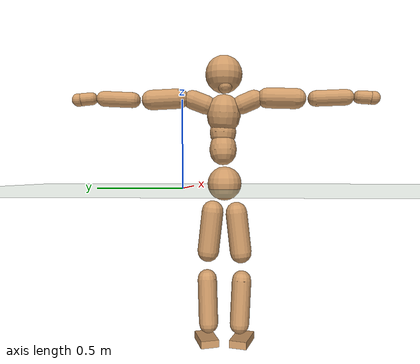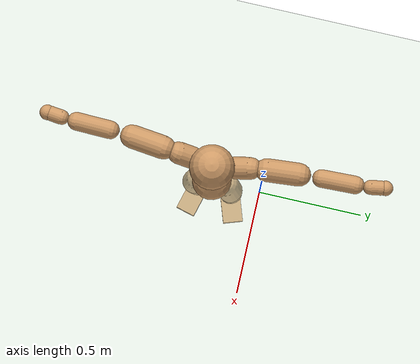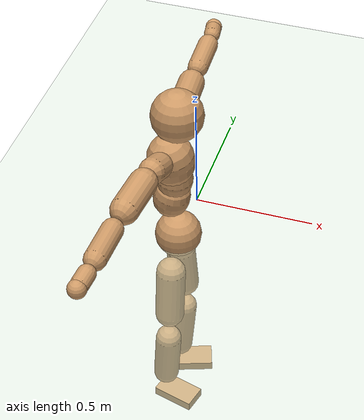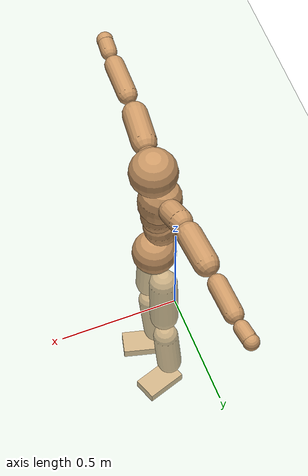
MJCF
<mujoco model="humanoid">
  <compiler coordinate="local"/>
  <default>
    <joint damping="0.0" armature="0.01" stiffness="0.0" limited="true"/>
    <geom conaffinity="1" condim="3" contype="7" margin="0.001" rgba="0.8 0.6 .4 1"/>
  </default>
  <asset>
    <texture type="skybox" builtin="gradient" rgb1=".4 .5 .6" rgb2="0 0 0" width="100" height="100"/>
    <texture builtin="flat" height="1278" mark="cross" markrgb="1 1 1" name="texgeom" random="0.01" rgb1="0.8 0.6 0.4" rgb2="0.8 0.6 0.4" type="cube" width="127"/>
    <texture builtin="checker" height="100" name="texplane" rgb1="0 0 0" rgb2="0.8 0.8 0.8" type="2d" width="100"/>
    <material name="MatPlane" reflectance="0.5" shininess="1" specular="1" texrepeat="60 60" texture="texplane"/>
    <material name="geom" texture="texgeom" texuniform="true"/>
  </asset>
  <worldbody>
    <light cutoff="100" diffuse="1 1 1" dir="-0 0 -1.3" directional="true" exponent="1" pos="0 0 1.3" specular=".1 .1 .1"/>
    <geom conaffinity="1" condim="3" name="floor" pos="0 0 0" rgba="0.8 0.9 0.8 1" size="100 100 .2" type="plane" material="MatPlane"/>
    <body name="Pelvis" pos="-0.0024 -0.2387 0.0293">
      <freejoint name="Pelvis"/>
      <geom type="sphere" contype="1" conaffinity="1" density="500" size="0.0963" pos="0.0000 0.0000 0.0000" name="Pelvis"/>
      <body name="L_Hip" pos="-0.017 0.0583 -0.0816">
        <joint name="L_Hip_x" type="hinge" pos="0 0 0" axis="1 0 0" stiffness="800" damping="80" armature="0.02" range="-180.0000 180.0000"/>
        <joint name="L_Hip_y" type="hinge" pos="0 0 0" axis="0 1 0" stiffness="800" damping="80" armature="0.02" range="-180.0000 180.0000"/>
        <joint name="L_Hip_z" type="hinge" pos="0 0 0" axis="0 0 1" stiffness="800" damping="80" armature="0.02" range="-180.0000 180.0000"/>
        <geom type="capsule" contype="1" conaffinity="1" density="500" fromto="0.0017 0.0086 -0.0763 0.0070 0.0343 -0.3052" size="0.0617" name="L_Hip"/>
        <body name="L_Knee" pos="0.0087 0.0429 -0.3815">
          <joint name="L_Knee_x" type="hinge" pos="0 0 0" axis="1 0 0" stiffness="800" damping="80" armature="0.02" range="-180.0000 180.0000"/>
          <joint name="L_Knee_y" type="hinge" pos="0 0 0" axis="0 1 0" stiffness="800" damping="80" armature="0.02" range="-180.0000 180.0000"/>
          <joint name="L_Knee_z" type="hinge" pos="0 0 0" axis="0 0 1" stiffness="800" damping="80" armature="0.02" range="-180.0000 180.0000"/>
          <geom type="capsule" contype="1" conaffinity="1" density="500" fromto="-0.0074 -0.0029 -0.0842 -0.0295 -0.0117 -0.3370" size="0.0547" name="L_Knee"/>
          <body name="L_Ankle" pos="-0.0369 -0.0146 -0.4212">
            <joint name="L_Ankle_x" type="hinge" pos="0 0 0" axis="1 0 0" stiffness="800" damping="80" armature="0.02" range="-180.0000 180.0000"/>
            <joint name="L_Ankle_y" type="hinge" pos="0 0 0" axis="0 1 0" stiffness="800" damping="80" armature="0.02" range="-180.0000 180.0000"/>
            <joint name="L_Ankle_z" type="hinge" pos="0 0 0" axis="0 0 1" stiffness="800" damping="80" armature="0.02" range="-180.0000 180.0000"/>
            <geom type="box" contype="1" conaffinity="1" density="500" pos="0.0604 0.0206 -0.0298" size="0.0881 0.052 0.0213" quat="0.9865 0.0000 0.0000 0.1637" name="L_Ankle"/>
            <body name="L_Toe" pos="0.1208 0.0412 -0.0597">
              <joint name="L_Toe_x" type="hinge" pos="0 0 0" axis="1 0 0" stiffness="500" damping="50" armature="0.02" range="-180.0000 180.0000"/>
              <joint name="L_Toe_y" type="hinge" pos="0 0 0" axis="0 1 0" stiffness="500" damping="50" armature="0.02" range="-180.0000 180.0000"/>
              <joint name="L_Toe_z" type="hinge" pos="0 0 0" axis="0 0 1" stiffness="500" damping="50" armature="0.02" range="-180.0000 180.0000"/>
              <geom type="box" contype="1" conaffinity="1" density="500" pos="0.0000 0.0000 0.0290" size="0.0011 0.0025 0.001" quat="0.9857 0.0000 0.0000 0.1684" name="L_Toe"/>
            </body>
          </body>
        </body>
      </body>
      <body name="R_Hip" pos="-0.0127 -0.0599 -0.0899">
        <joint name="R_Hip_x" type="hinge" pos="0 0 0" axis="1 0 0" stiffness="800" damping="80" armature="0.02" range="-180.0000 180.0000"/>
        <joint name="R_Hip_y" type="hinge" pos="0 0 0" axis="0 1 0" stiffness="800" damping="80" armature="0.02" range="-180.0000 180.0000"/>
        <joint name="R_Hip_z" type="hinge" pos="0 0 0" axis="0 0 1" stiffness="800" damping="80" armature="0.02" range="-180.0000 180.0000"/>
        <geom type="capsule" contype="1" conaffinity="1" density="500" fromto="-0.0009 -0.0085 -0.0756 -0.0035 -0.0340 -0.3025" size="0.0612" name="R_Hip"/>
        <body name="R_Knee" pos="-0.0043 -0.0425 -0.3782">
          <joint name="R_Knee_x" type="hinge" pos="0 0 0" axis="1 0 0" stiffness="800" damping="80" armature="0.02" range="-180.0000 180.0000"/>
          <joint name="R_Knee_y" type="hinge" pos="0 0 0" axis="0 1 0" stiffness="800" damping="80" armature="0.02" range="-180.0000 180.0000"/>
          <joint name="R_Knee_z" type="hinge" pos="0 0 0" axis="0 0 1" stiffness="800" damping="80" armature="0.02" range="-180.0000 180.0000"/>
          <geom type="capsule" contype="1" conaffinity="1" density="500" fromto="-0.0069 0.0037 -0.0828 -0.0275 0.0149 -0.3311" size="0.055" name="R_Knee"/>
          <body name="R_Ankle" pos="-0.0344 0.0186 -0.4139">
            <joint name="R_Ankle_x" type="hinge" pos="0 0 0" axis="1 0 0" stiffness="800" damping="80" armature="0.02" range="-180.0000 180.0000"/>
            <joint name="R_Ankle_y" type="hinge" pos="0 0 0" axis="0 1 0" stiffness="800" damping="80" armature="0.02" range="-180.0000 180.0000"/>
            <joint name="R_Ankle_z" type="hinge" pos="0 0 0" axis="0 0 1" stiffness="800" damping="80" armature="0.02" range="-180.0000 180.0000"/>
            <geom type="box" contype="1" conaffinity="1" density="500" pos="0.0646 -0.0171 -0.0304" size="0.0904 0.0508 0.0217" quat="0.9916 0.0000 0.0000 -0.1292" name="R_Ankle"/>
            <body name="R_Toe" pos="0.1293 -0.0343 -0.0608">
              <joint name="R_Toe_x" type="hinge" pos="0 0 0" axis="1 0 0" stiffness="500" damping="50" armature="0.02" range="-180.0000 180.0000"/>
              <joint name="R_Toe_y" type="hinge" pos="0 0 0" axis="0 1 0" stiffness="500" damping="50" armature="0.02" range="-180.0000 180.0000"/>
              <joint name="R_Toe_z" type="hinge" pos="0 0 0" axis="0 0 1" stiffness="500" damping="50" armature="0.02" range="-180.0000 180.0000"/>
              <geom type="box" contype="1" conaffinity="1" density="500" pos="0.0000 0.0000 0.0303" size="0.0011 0.0025 0.0011" quat="0.9927 0.0000 0.0000 -0.1202" name="R_Toe"/>
            </body>
          </body>
        </body>
      </body>
      <body name="Torso" pos="-0.0391 0.0044 0.1236">
        <joint name="Torso_x" type="hinge" pos="0 0 0" axis="1 0 0" stiffness="1000" damping="100" armature="0.02" range="-180.0000 180.0000"/>
        <joint name="Torso_y" type="hinge" pos="0 0 0" axis="0 1 0" stiffness="1000" damping="100" armature="0.02" range="-180.0000 180.0000"/>
        <joint name="Torso_z" type="hinge" pos="0 0 0" axis="0 0 1" stiffness="1000" damping="100" armature="0.02" range="-180.0000 180.0000"/>
        <geom type="capsule" contype="1" conaffinity="1" density="500" fromto="0.0157 0.0027 0.0820 0.0105 0.0018 0.0547" size="0.074493" name="Torso"/>
        <body name="Spine" pos="0.0262 0.0045 0.1367">
          <joint name="Spine_x" type="hinge" pos="0 0 0" axis="1 0 0" stiffness="1000" damping="100" armature="0.02" range="-180.0000 180.0000"/>
          <joint name="Spine_y" type="hinge" pos="0 0 0" axis="0 1 0" stiffness="1000" damping="100" armature="0.02" range="-180.0000 180.0000"/>
          <joint name="Spine_z" type="hinge" pos="0 0 0" axis="0 0 1" stiffness="1000" damping="100" armature="0.02" range="-180.0000 180.0000"/>
          <geom type="capsule" contype="1" conaffinity="1" density="500" fromto="0.0017 -0.0013 0.0333 0.0011 -0.0009 0.0222" size="0.073284" name="Spine"/>
          <body name="Chest" pos="0.0028 -0.0022 0.0555">
            <joint name="Chest_x" type="hinge" pos="0 0 0" axis="1 0 0" stiffness="1000" damping="100" armature="0.02" range="-180.0000 180.0000"/>
            <joint name="Chest_y" type="hinge" pos="0 0 0" axis="0 1 0" stiffness="1000" damping="100" armature="0.02" range="-180.0000 180.0000"/>
            <joint name="Chest_z" type="hinge" pos="0 0 0" axis="0 0 1" stiffness="1000" damping="100" armature="0.02" range="-180.0000 180.0000"/>
            <geom type="capsule" contype="1" conaffinity="1" density="500" fromto="-0.0153 -0.0048 0.0863 -0.0102 -0.0032 0.0576" size="0.093651" name="Chest"/>
            <body name="Neck" pos="-0.0332 -0.0129 0.2081">
              <joint name="Neck_x" type="hinge" pos="0 0 0" axis="1 0 0" stiffness="500" damping="50" armature="0.02" range="-180.0000 180.0000"/>
              <joint name="Neck_y" type="hinge" pos="0 0 0" axis="0 1 0" stiffness="500" damping="50" armature="0.02" range="-180.0000 180.0000"/>
              <joint name="Neck_z" type="hinge" pos="0 0 0" axis="0 0 1" stiffness="500" damping="50" armature="0.02" range="-180.0000 180.0000"/>
              <geom type="capsule" contype="1" conaffinity="1" density="500" fromto="0.0100 0.0020 0.0174 0.0399 0.0082 0.0697" size="0.04185" name="Neck"/>
              <body name="Head" pos="0.0499 0.0102 0.0872">
                <joint name="Head_x" type="hinge" pos="0 0 0" axis="1 0 0" stiffness="500" damping="50" armature="0.02" range="-180.0000 180.0000"/>
                <joint name="Head_y" type="hinge" pos="0 0 0" axis="0 1 0" stiffness="500" damping="50" armature="0.02" range="-180.0000 180.0000"/>
                <joint name="Head_z" type="hinge" pos="0 0 0" axis="0 0 1" stiffness="500" damping="50" armature="0.02" range="-180.0000 180.0000"/>
                <geom type="sphere" contype="1" conaffinity="1" density="500" size="0.1041" pos="0.0000 0.0000 0.0000" name="Head"/>
              </body>
            </body>
            <body name="L_Thorax" pos="-0.0193 0.07 0.1126">
              <joint name="L_Thorax_x" type="hinge" pos="0 0 0" axis="1 0 0" stiffness="500" damping="50" armature="0.02" range="-180.0000 180.0000"/>
              <joint name="L_Thorax_y" type="hinge" pos="0 0 0" axis="0 1 0" stiffness="500" damping="50" armature="0.02" range="-180.0000 180.0000"/>
              <joint name="L_Thorax_z" type="hinge" pos="0 0 0" axis="0 0 1" stiffness="500" damping="50" armature="0.02" range="-180.0000 180.0000"/>
              <geom type="capsule" contype="1" conaffinity="1" density="500" fromto="-0.0037 0.0241 0.0088 -0.0148 0.0966 0.0353" size="0.0522" name="L_Thorax"/>
              <body name="L_Shoulder" pos="-0.0185 0.1207 0.0441">
                <joint name="L_Shoulder_x" type="hinge" pos="0 0 0" axis="1 0 0" stiffness="500" damping="50" armature="0.02" range="-720.0000 720.0000"/>
                <joint name="L_Shoulder_y" type="hinge" pos="0 0 0" axis="0 1 0" stiffness="500" damping="50" armature="0.02" range="-720.0000 720.0000"/>
                <joint name="L_Shoulder_z" type="hinge" pos="0 0 0" axis="0 0 1" stiffness="500" damping="50" armature="0.02" range="-720.0000 720.0000"/>
                <geom type="capsule" contype="1" conaffinity="1" density="500" fromto="-0.0045 0.0503 -0.0029 -0.0182 0.2011 -0.0118" size="0.0544" name="L_Shoulder"/>
                <body name="L_Elbow" pos="-0.0227 0.2513 -0.0147">
                  <joint name="L_Elbow_x" type="hinge" pos="0 0 0" axis="1 0 0" stiffness="500" damping="50" armature="0.02" range="-720.0000 720.0000"/>
                  <joint name="L_Elbow_y" type="hinge" pos="0 0 0" axis="0 1 0" stiffness="500" damping="50" armature="0.02" range="-720.0000 720.0000"/>
                  <joint name="L_Elbow_z" type="hinge" pos="0 0 0" axis="0 0 1" stiffness="500" damping="50" armature="0.02" range="-720.0000 720.0000"/>
                  <geom type="capsule" contype="1" conaffinity="1" density="500" fromto="-0.0015 0.0527 0.0025 -0.0061 0.2107 0.0100" size="0.0422" name="L_Elbow"/>
                  <body name="L_Wrist" pos="-0.0076 0.2633 0.0125">
                    <joint name="L_Wrist_x" type="hinge" pos="0 0 0" axis="1 0 0" stiffness="300" damping="30" armature="0.02" range="-180.0000 180.0000"/>
                    <joint name="L_Wrist_y" type="hinge" pos="0 0 0" axis="0 1 0" stiffness="300" damping="30" armature="0.02" range="-180.0000 180.0000"/>
                    <joint name="L_Wrist_z" type="hinge" pos="0 0 0" axis="0 0 1" stiffness="300" damping="30" armature="0.02" range="-180.0000 180.0000"/>
                    <geom type="capsule" contype="1" conaffinity="1" density="500" fromto="-0.0031 0.0173 -0.0021 -0.0124 0.0691 -0.0085" size="0.034" name="L_Wrist"/>
                    <body name="L_Hand" pos="-0.0155 0.0863 -0.0106">
                      <joint name="L_Hand_x" type="hinge" pos="0 0 0" axis="1 0 0" stiffness="300" damping="30" armature="0.02" range="-180.0000 180.0000"/>
                      <joint name="L_Hand_y" type="hinge" pos="0 0 0" axis="0 1 0" stiffness="300" damping="30" armature="0.02" range="-180.0000 180.0000"/>
                      <joint name="L_Hand_z" type="hinge" pos="0 0 0" axis="0 0 1" stiffness="300" damping="30" armature="0.02" range="-180.0000 180.0000"/>
                      <geom type="sphere" contype="1" conaffinity="1" density="500" size="0.0354" pos="0.0000 0.0000 0.0000" name="L_Hand"/>
                    </body>
                  </body>
                </body>
              </body>
            </body>
            <body name="R_Thorax" pos="-0.024 -0.081 0.111">
              <joint name="R_Thorax_x" type="hinge" pos="0 0 0" axis="1 0 0" stiffness="500" damping="50" armature="0.02" range="-180.0000 180.0000"/>
              <joint name="R_Thorax_y" type="hinge" pos="0 0 0" axis="0 1 0" stiffness="500" damping="50" armature="0.02" range="-180.0000 180.0000"/>
              <joint name="R_Thorax_z" type="hinge" pos="0 0 0" axis="0 0 1" stiffness="500" damping="50" armature="0.02" range="-180.0000 180.0000"/>
              <geom type="capsule" contype="1" conaffinity="1" density="500" fromto="-0.0016 -0.0222 0.0091 -0.0066 -0.0889 0.0364" size="0.0523" name="R_Thorax"/>
              <body name="R_Shoulder" pos="-0.0082 -0.1112 0.0455">
                <joint name="R_Shoulder_x" type="hinge" pos="0 0 0" axis="1 0 0" stiffness="500" damping="50" armature="0.02" range="-720.0000 720.0000"/>
                <joint name="R_Shoulder_y" type="hinge" pos="0 0 0" axis="0 1 0" stiffness="500" damping="50" armature="0.02" range="-720.0000 720.0000"/>
                <joint name="R_Shoulder_z" type="hinge" pos="0 0 0" axis="0 0 1" stiffness="500" damping="50" armature="0.02" range="-720.0000 720.0000"/>
                <geom type="capsule" contype="1" conaffinity="1" density="500" fromto="-0.0062 -0.0513 -0.0027 -0.0247 -0.2051 -0.0108" size="0.0551" name="R_Shoulder"/>
                <body name="R_Elbow" pos="-0.0308 -0.2564 -0.0135">
                  <joint name="R_Elbow_x" type="hinge" pos="0 0 0" axis="1 0 0" stiffness="500" damping="50" armature="0.02" range="-720.0000 720.0000"/>
                  <joint name="R_Elbow_y" type="hinge" pos="0 0 0" axis="0 1 0" stiffness="500" damping="50" armature="0.02" range="-720.0000 720.0000"/>
                  <joint name="R_Elbow_z" type="hinge" pos="0 0 0" axis="0 0 1" stiffness="500" damping="50" armature="0.02" range="-720.0000 720.0000"/>
                  <geom type="capsule" contype="1" conaffinity="1" density="500" fromto="-0.0012 -0.0533 0.0014 -0.0049 -0.2134 0.0056" size="0.0428" name="R_Elbow"/>
                  <body name="R_Wrist" pos="-0.0061 -0.2667 0.007">
                    <joint name="R_Wrist_x" type="hinge" pos="0 0 0" axis="1 0 0" stiffness="300" damping="30" armature="0.02" range="-180.0000 180.0000"/>
                    <joint name="R_Wrist_y" type="hinge" pos="0 0 0" axis="0 1 0" stiffness="300" damping="30" armature="0.02" range="-180.0000 180.0000"/>
                    <joint name="R_Wrist_z" type="hinge" pos="0 0 0" axis="0 0 1" stiffness="300" damping="30" armature="0.02" range="-180.0000 180.0000"/>
                    <geom type="capsule" contype="1" conaffinity="1" density="500" fromto="-0.0020 -0.0177 -0.0017 -0.0081 -0.0707 -0.0069" size="0.0347" name="R_Wrist"/>
                    <body name="R_Hand" pos="-0.0101 -0.0884 -0.0086">
                      <joint name="R_Hand_x" type="hinge" pos="0 0 0" axis="1 0 0" stiffness="300" damping="30" armature="0.02" range="-180.0000 180.0000"/>
                      <joint name="R_Hand_y" type="hinge" pos="0 0 0" axis="0 1 0" stiffness="300" damping="30" armature="0.02" range="-180.0000 180.0000"/>
                      <joint name="R_Hand_z" type="hinge" pos="0 0 0" axis="0 0 1" stiffness="300" damping="30" armature="0.02" range="-180.0000 180.0000"/>
                      <geom type="sphere" contype="1" conaffinity="1" density="500" size="0.0360" pos="0.0000 0.0000 0.0000" name="R_Hand"/>
                    </body>
                  </body>
                </body>
              </body>
            </body>
          </body>
        </body>
      </body>
    </body>
  </worldbody>
  <actuator>
    <motor name="L_Hip_x" joint="L_Hip_x" gear="500"/>
    <motor name="L_Hip_y" joint="L_Hip_y" gear="500"/>
    <motor name="L_Hip_z" joint="L_Hip_z" gear="500"/>
    <motor name="L_Knee_x" joint="L_Knee_x" gear="500"/>
    <motor name="L_Knee_y" joint="L_Knee_y" gear="500"/>
    <motor name="L_Knee_z" joint="L_Knee_z" gear="500"/>
    <motor name="L_Ankle_x" joint="L_Ankle_x" gear="500"/>
    <motor name="L_Ankle_y" joint="L_Ankle_y" gear="500"/>
    <motor name="L_Ankle_z" joint="L_Ankle_z" gear="500"/>
    <motor name="L_Toe_x" joint="L_Toe_x" gear="500"/>
    <motor name="L_Toe_y" joint="L_Toe_y" gear="500"/>
    <motor name="L_Toe_z" joint="L_Toe_z" gear="500"/>
    <motor name="R_Hip_x" joint="R_Hip_x" gear="500"/>
    <motor name="R_Hip_y" joint="R_Hip_y" gear="500"/>
    <motor name="R_Hip_z" joint="R_Hip_z" gear="500"/>
    <motor name="R_Knee_x" joint="R_Knee_x" gear="500"/>
    <motor name="R_Knee_y" joint="R_Knee_y" gear="500"/>
    <motor name="R_Knee_z" joint="R_Knee_z" gear="500"/>
    <motor name="R_Ankle_x" joint="R_Ankle_x" gear="500"/>
    <motor name="R_Ankle_y" joint="R_Ankle_y" gear="500"/>
    <motor name="R_Ankle_z" joint="R_Ankle_z" gear="500"/>
    <motor name="R_Toe_x" joint="R_Toe_x" gear="500"/>
    <motor name="R_Toe_y" joint="R_Toe_y" gear="500"/>
    <motor name="R_Toe_z" joint="R_Toe_z" gear="500"/>
    <motor name="Torso_x" joint="Torso_x" gear="500"/>
    <motor name="Torso_y" joint="Torso_y" gear="500"/>
    <motor name="Torso_z" joint="Torso_z" gear="500"/>
    <motor name="Spine_x" joint="Spine_x" gear="500"/>
    <motor name="Spine_y" joint="Spine_y" gear="500"/>
    <motor name="Spine_z" joint="Spine_z" gear="500"/>
    <motor name="Chest_x" joint="Chest_x" gear="500"/>
    <motor name="Chest_y" joint="Chest_y" gear="500"/>
    <motor name="Chest_z" joint="Chest_z" gear="500"/>
    <motor name="Neck_x" joint="Neck_x" gear="500"/>
    <motor name="Neck_y" joint="Neck_y" gear="500"/>
    <motor name="Neck_z" joint="Neck_z" gear="500"/>
    <motor name="Head_x" joint="Head_x" gear="500"/>
    <motor name="Head_y" joint="Head_y" gear="500"/>
    <motor name="Head_z" joint="Head_z" gear="500"/>
    <motor name="L_Thorax_x" joint="L_Thorax_x" gear="500"/>
    <motor name="L_Thorax_y" joint="L_Thorax_y" gear="500"/>
    <motor name="L_Thorax_z" joint="L_Thorax_z" gear="500"/>
    <motor name="L_Shoulder_x" joint="L_Shoulder_x" gear="500"/>
    <motor name="L_Shoulder_y" joint="L_Shoulder_y" gear="500"/>
    <motor name="L_Shoulder_z" joint="L_Shoulder_z" gear="500"/>
    <motor name="L_Elbow_x" joint="L_Elbow_x" gear="500"/>
    <motor name="L_Elbow_y" joint="L_Elbow_y" gear="500"/>
    <motor name="L_Elbow_z" joint="L_Elbow_z" gear="500"/>
    <motor name="L_Wrist_x" joint="L_Wrist_x" gear="500"/>
    <motor name="L_Wrist_y" joint="L_Wrist_y" gear="500"/>
    <motor name="L_Wrist_z" joint="L_Wrist_z" gear="500"/>
    <motor name="L_Hand_x" joint="L_Hand_x" gear="500"/>
    <motor name="L_Hand_y" joint="L_Hand_y" gear="500"/>
    <motor name="L_Hand_z" joint="L_Hand_z" gear="500"/>
    <motor name="R_Thorax_x" joint="R_Thorax_x" gear="500"/>
    <motor name="R_Thorax_y" joint="R_Thorax_y" gear="500"/>
    <motor name="R_Thorax_z" joint="R_Thorax_z" gear="500"/>
    <motor name="R_Shoulder_x" joint="R_Shoulder_x" gear="500"/>
    <motor name="R_Shoulder_y" joint="R_Shoulder_y" gear="500"/>
    <motor name="R_Shoulder_z" joint="R_Shoulder_z" gear="500"/>
    <motor name="R_Elbow_x" joint="R_Elbow_x" gear="500"/>
    <motor name="R_Elbow_y" joint="R_Elbow_y" gear="500"/>
    <motor name="R_Elbow_z" joint="R_Elbow_z" gear="500"/>
    <motor name="R_Wrist_x" joint="R_Wrist_x" gear="500"/>
    <motor name="R_Wrist_y" joint="R_Wrist_y" gear="500"/>
    <motor name="R_Wrist_z" joint="R_Wrist_z" gear="500"/>
    <motor name="R_Hand_x" joint="R_Hand_x" gear="500"/>
    <motor name="R_Hand_y" joint="R_Hand_y" gear="500"/>
    <motor name="R_Hand_z" joint="R_Hand_z" gear="500"/>
  </actuator>
  <contact>
    <exclude body1="Torso" body2="Chest"/>
    <exclude body1="Head" body2="Chest"/>
    <exclude body1="R_Knee" body2="R_Toe"/>
    <exclude body1="R_Knee" body2="L_Ankle"/>
    <exclude body1="R_Knee" body2="L_Toe"/>
    <exclude body1="L_Knee" body2="L_Toe"/>
    <exclude body1="L_Knee" body2="R_Ankle"/>
    <exclude body1="L_Knee" body2="R_Toe"/>
    <exclude body1="L_Shoulder" body2="Chest"/>
    <exclude body1="R_Shoulder" body2="Chest"/>
  </contact>
  <sensor/>
  <size njmax="700" nconmax="700"/>
</mujoco>
